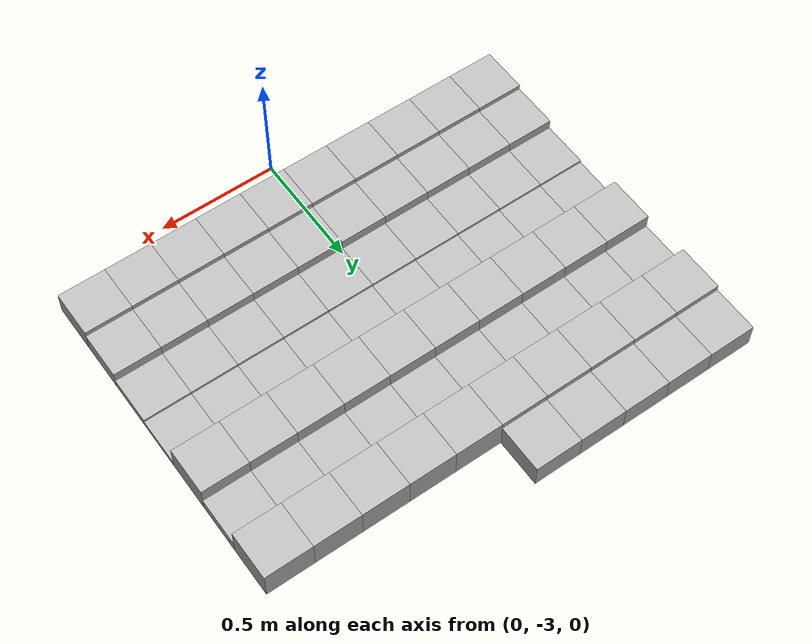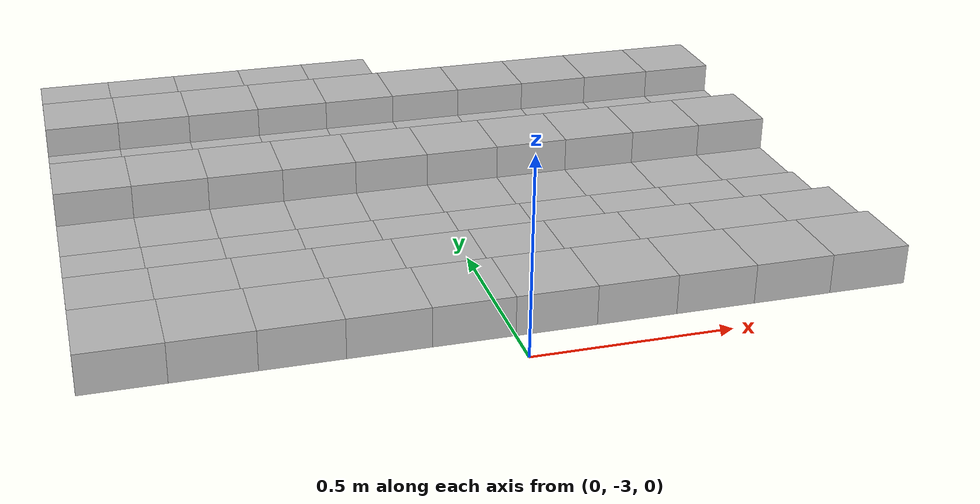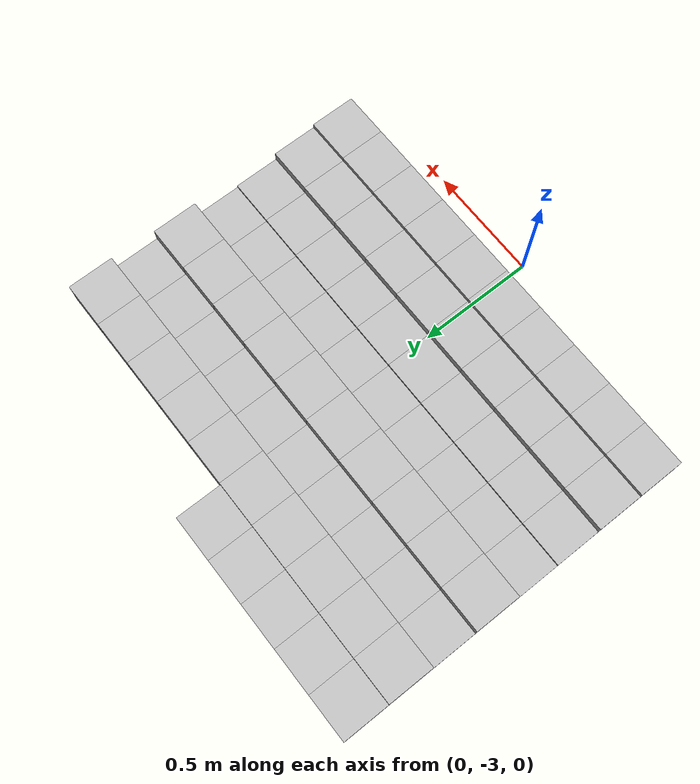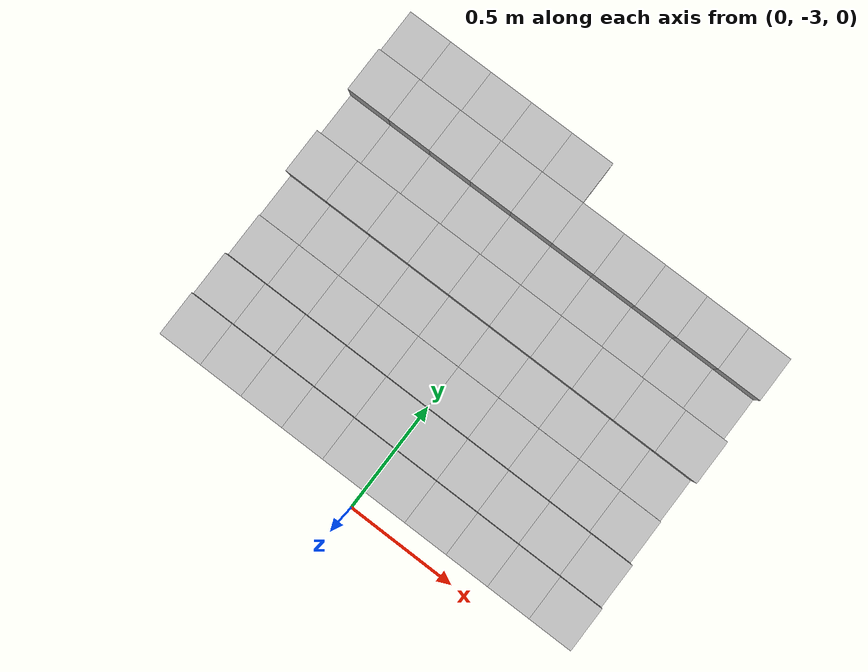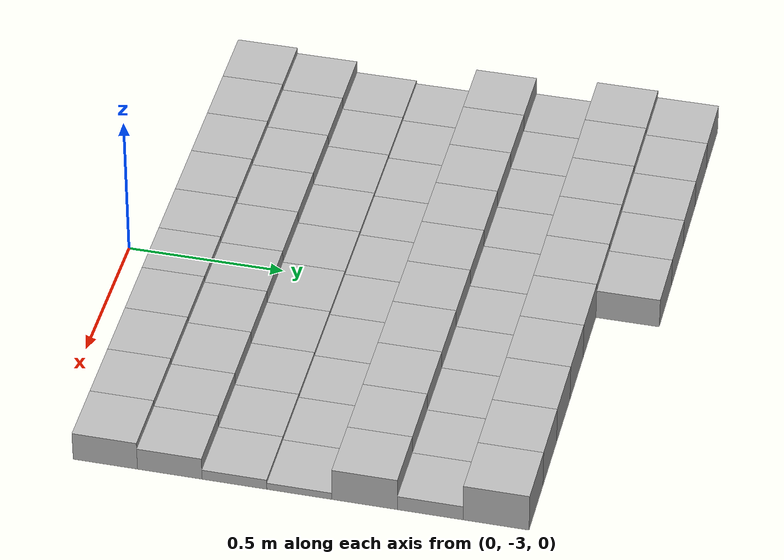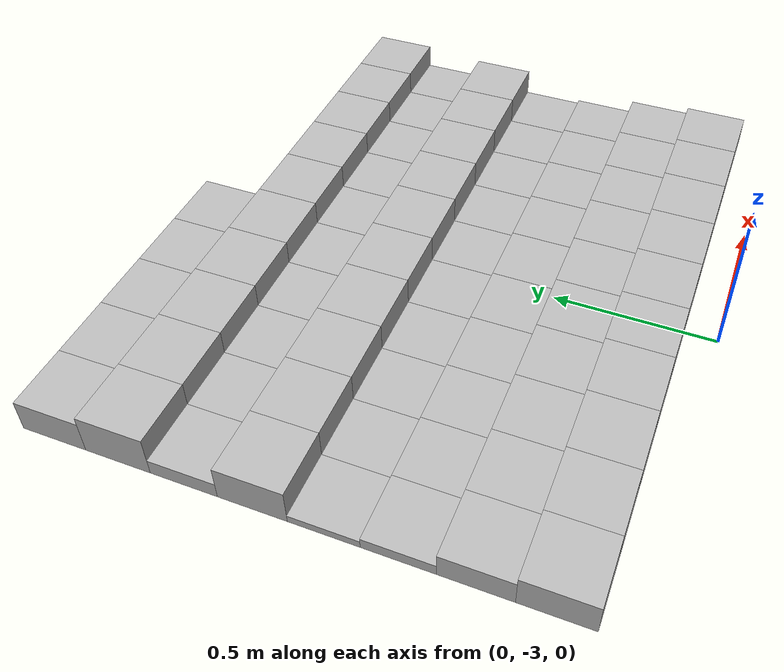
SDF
<sdf version="1.6">
 <model name="Terrain">
  <static>true</static>
  <link name="box_7_0">
   <pose>-0.9 -1.4 0.0535483578431 0 0 0</pose>
   <inertial>
    <mass>1.0</mass>
    <inertia><ixx>0.0</ixx><ixy>0.0</ixy><ixz>0.0</ixz><iyy>0.0</iyy><iyz>0.0</iyz><izz>0.0</izz></inertia>
   </inertial>
   <collision name="collision"><geometry><box><size>0.2 0.2 0.107096715686</size></box></geometry></collision>
   <visual name="visual"><geometry><box><size>0.2 0.2 0.107096715686</size></box></geometry></visual>
  </link>
  <link name="box_7_1">
   <pose>-0.7 -1.4 0.0535483578431 0 0 0</pose>
   <inertial>
    <mass>1.0</mass>
    <inertia><ixx>0.0</ixx><ixy>0.0</ixy><ixz>0.0</ixz><iyy>0.0</iyy><iyz>0.0</iyz><izz>0.0</izz></inertia>
   </inertial>
   <collision name="collision"><geometry><box><size>0.2 0.2 0.107096715686</size></box></geometry></collision>
   <visual name="visual"><geometry><box><size>0.2 0.2 0.107096715686</size></box></geometry></visual>
  </link>
  <link name="box_7_2">
   <pose>-0.5 -1.4 0.0535483578431 0 0 0</pose>
   <inertial>
    <mass>1.0</mass>
    <inertia><ixx>0.0</ixx><ixy>0.0</ixy><ixz>0.0</ixz><iyy>0.0</iyy><iyz>0.0</iyz><izz>0.0</izz></inertia>
   </inertial>
   <collision name="collision"><geometry><box><size>0.2 0.2 0.107096715686</size></box></geometry></collision>
   <visual name="visual"><geometry><box><size>0.2 0.2 0.107096715686</size></box></geometry></visual>
  </link>
  <link name="box_7_3">
   <pose>-0.3 -1.4 0.0535483578431 0 0 0</pose>
   <inertial>
    <mass>1.0</mass>
    <inertia><ixx>0.0</ixx><ixy>0.0</ixy><ixz>0.0</ixz><iyy>0.0</iyy><iyz>0.0</iyz><izz>0.0</izz></inertia>
   </inertial>
   <collision name="collision"><geometry><box><size>0.2 0.2 0.107096715686</size></box></geometry></collision>
   <visual name="visual"><geometry><box><size>0.2 0.2 0.107096715686</size></box></geometry></visual>
  </link>
  <link name="box_7_4">
   <pose>-0.1 -1.4 0.0535483578431 0 0 0</pose>
   <inertial>
    <mass>1.0</mass>
    <inertia><ixx>0.0</ixx><ixy>0.0</ixy><ixz>0.0</ixz><iyy>0.0</iyy><iyz>0.0</iyz><izz>0.0</izz></inertia>
   </inertial>
   <collision name="collision"><geometry><box><size>0.2 0.2 0.107096715686</size></box></geometry></collision>
   <visual name="visual"><geometry><box><size>0.2 0.2 0.107096715686</size></box></geometry></visual>
  </link>
  <link name="box_8_0">
   <pose>-0.9 -1.6 0.0668786849973 0 0 0</pose>
   <inertial>
    <mass>1.0</mass>
    <inertia><ixx>0.0</ixx><ixy>0.0</ixy><ixz>0.0</ixz><iyy>0.0</iyy><iyz>0.0</iyz><izz>0.0</izz></inertia>
   </inertial>
   <collision name="collision"><geometry><box><size>0.2 0.2 0.133757369995</size></box></geometry></collision>
   <visual name="visual"><geometry><box><size>0.2 0.2 0.133757369995</size></box></geometry></visual>
  </link>
  <link name="box_8_1">
   <pose>-0.7 -1.6 0.0668786849973 0 0 0</pose>
   <inertial>
    <mass>1.0</mass>
    <inertia><ixx>0.0</ixx><ixy>0.0</ixy><ixz>0.0</ixz><iyy>0.0</iyy><iyz>0.0</iyz><izz>0.0</izz></inertia>
   </inertial>
   <collision name="collision"><geometry><box><size>0.2 0.2 0.133757369995</size></box></geometry></collision>
   <visual name="visual"><geometry><box><size>0.2 0.2 0.133757369995</size></box></geometry></visual>
  </link>
  <link name="box_8_2">
   <pose>-0.5 -1.6 0.0668786849973 0 0 0</pose>
   <inertial>
    <mass>1.0</mass>
    <inertia><ixx>0.0</ixx><ixy>0.0</ixy><ixz>0.0</ixz><iyy>0.0</iyy><iyz>0.0</iyz><izz>0.0</izz></inertia>
   </inertial>
   <collision name="collision"><geometry><box><size>0.2 0.2 0.133757369995</size></box></geometry></collision>
   <visual name="visual"><geometry><box><size>0.2 0.2 0.133757369995</size></box></geometry></visual>
  </link>
  <link name="box_8_3">
   <pose>-0.3 -1.6 0.0668786849973 0 0 0</pose>
   <inertial>
    <mass>1.0</mass>
    <inertia><ixx>0.0</ixx><ixy>0.0</ixy><ixz>0.0</ixz><iyy>0.0</iyy><iyz>0.0</iyz><izz>0.0</izz></inertia>
   </inertial>
   <collision name="collision"><geometry><box><size>0.2 0.2 0.133757369995</size></box></geometry></collision>
   <visual name="visual"><geometry><box><size>0.2 0.2 0.133757369995</size></box></geometry></visual>
  </link>
  <link name="box_8_4">
   <pose>-0.1 -1.6 0.0668786849973 0 0 0</pose>
   <inertial>
    <mass>1.0</mass>
    <inertia><ixx>0.0</ixx><ixy>0.0</ixy><ixz>0.0</ixz><iyy>0.0</iyy><iyz>0.0</iyz><izz>0.0</izz></inertia>
   </inertial>
   <collision name="collision"><geometry><box><size>0.2 0.2 0.133757369995</size></box></geometry></collision>
   <visual name="visual"><geometry><box><size>0.2 0.2 0.133757369995</size></box></geometry></visual>
  </link>
  <link name="box_8_5">
   <pose>0.1 -1.6 0.0668786849973 0 0 0</pose>
   <inertial>
    <mass>1.0</mass>
    <inertia><ixx>0.0</ixx><ixy>0.0</ixy><ixz>0.0</ixz><iyy>0.0</iyy><iyz>0.0</iyz><izz>0.0</izz></inertia>
   </inertial>
   <collision name="collision"><geometry><box><size>0.2 0.2 0.133757369995</size></box></geometry></collision>
   <visual name="visual"><geometry><box><size>0.2 0.2 0.133757369995</size></box></geometry></visual>
  </link>
  <link name="box_8_6">
   <pose>0.3 -1.6 0.0668786849973 0 0 0</pose>
   <inertial>
    <mass>1.0</mass>
    <inertia><ixx>0.0</ixx><ixy>0.0</ixy><ixz>0.0</ixz><iyy>0.0</iyy><iyz>0.0</iyz><izz>0.0</izz></inertia>
   </inertial>
   <collision name="collision"><geometry><box><size>0.2 0.2 0.133757369995</size></box></geometry></collision>
   <visual name="visual"><geometry><box><size>0.2 0.2 0.133757369995</size></box></geometry></visual>
  </link>
  <link name="box_8_7">
   <pose>0.5 -1.6 0.0668786849973 0 0 0</pose>
   <inertial>
    <mass>1.0</mass>
    <inertia><ixx>0.0</ixx><ixy>0.0</ixy><ixz>0.0</ixz><iyy>0.0</iyy><iyz>0.0</iyz><izz>0.0</izz></inertia>
   </inertial>
   <collision name="collision"><geometry><box><size>0.2 0.2 0.133757369995</size></box></geometry></collision>
   <visual name="visual"><geometry><box><size>0.2 0.2 0.133757369995</size></box></geometry></visual>
  </link>
  <link name="box_8_8">
   <pose>0.7 -1.6 0.0668786849973 0 0 0</pose>
   <inertial>
    <mass>1.0</mass>
    <inertia><ixx>0.0</ixx><ixy>0.0</ixy><ixz>0.0</ixz><iyy>0.0</iyy><iyz>0.0</iyz><izz>0.0</izz></inertia>
   </inertial>
   <collision name="collision"><geometry><box><size>0.2 0.2 0.133757369995</size></box></geometry></collision>
   <visual name="visual"><geometry><box><size>0.2 0.2 0.133757369995</size></box></geometry></visual>
  </link>
  <link name="box_8_9">
   <pose>0.9 -1.6 0.0668786849973 0 0 0</pose>
   <inertial>
    <mass>1.0</mass>
    <inertia><ixx>0.0</ixx><ixy>0.0</ixy><ixz>0.0</ixz><iyy>0.0</iyy><iyz>0.0</iyz><izz>0.0</izz></inertia>
   </inertial>
   <collision name="collision"><geometry><box><size>0.2 0.2 0.133757369995</size></box></geometry></collision>
   <visual name="visual"><geometry><box><size>0.2 0.2 0.133757369995</size></box></geometry></visual>
  </link>
  <link name="box_9_0">
   <pose>-0.9 -1.8 0.0262143682636 0 0 0</pose>
   <inertial>
    <mass>1.0</mass>
    <inertia><ixx>0.0</ixx><ixy>0.0</ixy><ixz>0.0</ixz><iyy>0.0</iyy><iyz>0.0</iyz><izz>0.0</izz></inertia>
   </inertial>
   <collision name="collision"><geometry><box><size>0.2 0.2 0.0524287365273</size></box></geometry></collision>
   <visual name="visual"><geometry><box><size>0.2 0.2 0.0524287365273</size></box></geometry></visual>
  </link>
  <link name="box_9_1">
   <pose>-0.7 -1.8 0.0262143682636 0 0 0</pose>
   <inertial>
    <mass>1.0</mass>
    <inertia><ixx>0.0</ixx><ixy>0.0</ixy><ixz>0.0</ixz><iyy>0.0</iyy><iyz>0.0</iyz><izz>0.0</izz></inertia>
   </inertial>
   <collision name="collision"><geometry><box><size>0.2 0.2 0.0524287365273</size></box></geometry></collision>
   <visual name="visual"><geometry><box><size>0.2 0.2 0.0524287365273</size></box></geometry></visual>
  </link>
  <link name="box_9_2">
   <pose>-0.5 -1.8 0.0262143682636 0 0 0</pose>
   <inertial>
    <mass>1.0</mass>
    <inertia><ixx>0.0</ixx><ixy>0.0</ixy><ixz>0.0</ixz><iyy>0.0</iyy><iyz>0.0</iyz><izz>0.0</izz></inertia>
   </inertial>
   <collision name="collision"><geometry><box><size>0.2 0.2 0.0524287365273</size></box></geometry></collision>
   <visual name="visual"><geometry><box><size>0.2 0.2 0.0524287365273</size></box></geometry></visual>
  </link>
  <link name="box_9_3">
   <pose>-0.3 -1.8 0.0262143682636 0 0 0</pose>
   <inertial>
    <mass>1.0</mass>
    <inertia><ixx>0.0</ixx><ixy>0.0</ixy><ixz>0.0</ixz><iyy>0.0</iyy><iyz>0.0</iyz><izz>0.0</izz></inertia>
   </inertial>
   <collision name="collision"><geometry><box><size>0.2 0.2 0.0524287365273</size></box></geometry></collision>
   <visual name="visual"><geometry><box><size>0.2 0.2 0.0524287365273</size></box></geometry></visual>
  </link>
  <link name="box_9_4">
   <pose>-0.1 -1.8 0.0262143682636 0 0 0</pose>
   <inertial>
    <mass>1.0</mass>
    <inertia><ixx>0.0</ixx><ixy>0.0</ixy><ixz>0.0</ixz><iyy>0.0</iyy><iyz>0.0</iyz><izz>0.0</izz></inertia>
   </inertial>
   <collision name="collision"><geometry><box><size>0.2 0.2 0.0524287365273</size></box></geometry></collision>
   <visual name="visual"><geometry><box><size>0.2 0.2 0.0524287365273</size></box></geometry></visual>
  </link>
  <link name="box_9_5">
   <pose>0.1 -1.8 0.0262143682636 0 0 0</pose>
   <inertial>
    <mass>1.0</mass>
    <inertia><ixx>0.0</ixx><ixy>0.0</ixy><ixz>0.0</ixz><iyy>0.0</iyy><iyz>0.0</iyz><izz>0.0</izz></inertia>
   </inertial>
   <collision name="collision"><geometry><box><size>0.2 0.2 0.0524287365273</size></box></geometry></collision>
   <visual name="visual"><geometry><box><size>0.2 0.2 0.0524287365273</size></box></geometry></visual>
  </link>
  <link name="box_9_6">
   <pose>0.3 -1.8 0.0262143682636 0 0 0</pose>
   <inertial>
    <mass>1.0</mass>
    <inertia><ixx>0.0</ixx><ixy>0.0</ixy><ixz>0.0</ixz><iyy>0.0</iyy><iyz>0.0</iyz><izz>0.0</izz></inertia>
   </inertial>
   <collision name="collision"><geometry><box><size>0.2 0.2 0.0524287365273</size></box></geometry></collision>
   <visual name="visual"><geometry><box><size>0.2 0.2 0.0524287365273</size></box></geometry></visual>
  </link>
  <link name="box_9_7">
   <pose>0.5 -1.8 0.0262143682636 0 0 0</pose>
   <inertial>
    <mass>1.0</mass>
    <inertia><ixx>0.0</ixx><ixy>0.0</ixy><ixz>0.0</ixz><iyy>0.0</iyy><iyz>0.0</iyz><izz>0.0</izz></inertia>
   </inertial>
   <collision name="collision"><geometry><box><size>0.2 0.2 0.0524287365273</size></box></geometry></collision>
   <visual name="visual"><geometry><box><size>0.2 0.2 0.0524287365273</size></box></geometry></visual>
  </link>
  <link name="box_9_8">
   <pose>0.7 -1.8 0.0262143682636 0 0 0</pose>
   <inertial>
    <mass>1.0</mass>
    <inertia><ixx>0.0</ixx><ixy>0.0</ixy><ixz>0.0</ixz><iyy>0.0</iyy><iyz>0.0</iyz><izz>0.0</izz></inertia>
   </inertial>
   <collision name="collision"><geometry><box><size>0.2 0.2 0.0524287365273</size></box></geometry></collision>
   <visual name="visual"><geometry><box><size>0.2 0.2 0.0524287365273</size></box></geometry></visual>
  </link>
  <link name="box_9_9">
   <pose>0.9 -1.8 0.0262143682636 0 0 0</pose>
   <inertial>
    <mass>1.0</mass>
    <inertia><ixx>0.0</ixx><ixy>0.0</ixy><ixz>0.0</ixz><iyy>0.0</iyy><iyz>0.0</iyz><izz>0.0</izz></inertia>
   </inertial>
   <collision name="collision"><geometry><box><size>0.2 0.2 0.0524287365273</size></box></geometry></collision>
   <visual name="visual"><geometry><box><size>0.2 0.2 0.0524287365273</size></box></geometry></visual>
  </link>
  <link name="box_10_0">
   <pose>-0.9 -2.0 0.0581974594022 0 0 0</pose>
   <inertial>
    <mass>1.0</mass>
    <inertia><ixx>0.0</ixx><ixy>0.0</ixy><ixz>0.0</ixz><iyy>0.0</iyy><iyz>0.0</iyz><izz>0.0</izz></inertia>
   </inertial>
   <collision name="collision"><geometry><box><size>0.2 0.2 0.116394918804</size></box></geometry></collision>
   <visual name="visual"><geometry><box><size>0.2 0.2 0.116394918804</size></box></geometry></visual>
  </link>
  <link name="box_10_1">
   <pose>-0.7 -2.0 0.0581974594022 0 0 0</pose>
   <inertial>
    <mass>1.0</mass>
    <inertia><ixx>0.0</ixx><ixy>0.0</ixy><ixz>0.0</ixz><iyy>0.0</iyy><iyz>0.0</iyz><izz>0.0</izz></inertia>
   </inertial>
   <collision name="collision"><geometry><box><size>0.2 0.2 0.116394918804</size></box></geometry></collision>
   <visual name="visual"><geometry><box><size>0.2 0.2 0.116394918804</size></box></geometry></visual>
  </link>
  <link name="box_10_2">
   <pose>-0.5 -2.0 0.0581974594022 0 0 0</pose>
   <inertial>
    <mass>1.0</mass>
    <inertia><ixx>0.0</ixx><ixy>0.0</ixy><ixz>0.0</ixz><iyy>0.0</iyy><iyz>0.0</iyz><izz>0.0</izz></inertia>
   </inertial>
   <collision name="collision"><geometry><box><size>0.2 0.2 0.116394918804</size></box></geometry></collision>
   <visual name="visual"><geometry><box><size>0.2 0.2 0.116394918804</size></box></geometry></visual>
  </link>
  <link name="box_10_3">
   <pose>-0.3 -2.0 0.0581974594022 0 0 0</pose>
   <inertial>
    <mass>1.0</mass>
    <inertia><ixx>0.0</ixx><ixy>0.0</ixy><ixz>0.0</ixz><iyy>0.0</iyy><iyz>0.0</iyz><izz>0.0</izz></inertia>
   </inertial>
   <collision name="collision"><geometry><box><size>0.2 0.2 0.116394918804</size></box></geometry></collision>
   <visual name="visual"><geometry><box><size>0.2 0.2 0.116394918804</size></box></geometry></visual>
  </link>
  <link name="box_10_4">
   <pose>-0.1 -2.0 0.0581974594022 0 0 0</pose>
   <inertial>
    <mass>1.0</mass>
    <inertia><ixx>0.0</ixx><ixy>0.0</ixy><ixz>0.0</ixz><iyy>0.0</iyy><iyz>0.0</iyz><izz>0.0</izz></inertia>
   </inertial>
   <collision name="collision"><geometry><box><size>0.2 0.2 0.116394918804</size></box></geometry></collision>
   <visual name="visual"><geometry><box><size>0.2 0.2 0.116394918804</size></box></geometry></visual>
  </link>
  <link name="box_10_5">
   <pose>0.1 -2.0 0.0581974594022 0 0 0</pose>
   <inertial>
    <mass>1.0</mass>
    <inertia><ixx>0.0</ixx><ixy>0.0</ixy><ixz>0.0</ixz><iyy>0.0</iyy><iyz>0.0</iyz><izz>0.0</izz></inertia>
   </inertial>
   <collision name="collision"><geometry><box><size>0.2 0.2 0.116394918804</size></box></geometry></collision>
   <visual name="visual"><geometry><box><size>0.2 0.2 0.116394918804</size></box></geometry></visual>
  </link>
  <link name="box_10_6">
   <pose>0.3 -2.0 0.0581974594022 0 0 0</pose>
   <inertial>
    <mass>1.0</mass>
    <inertia><ixx>0.0</ixx><ixy>0.0</ixy><ixz>0.0</ixz><iyy>0.0</iyy><iyz>0.0</iyz><izz>0.0</izz></inertia>
   </inertial>
   <collision name="collision"><geometry><box><size>0.2 0.2 0.116394918804</size></box></geometry></collision>
   <visual name="visual"><geometry><box><size>0.2 0.2 0.116394918804</size></box></geometry></visual>
  </link>
  <link name="box_10_7">
   <pose>0.5 -2.0 0.0581974594022 0 0 0</pose>
   <inertial>
    <mass>1.0</mass>
    <inertia><ixx>0.0</ixx><ixy>0.0</ixy><ixz>0.0</ixz><iyy>0.0</iyy><iyz>0.0</iyz><izz>0.0</izz></inertia>
   </inertial>
   <collision name="collision"><geometry><box><size>0.2 0.2 0.116394918804</size></box></geometry></collision>
   <visual name="visual"><geometry><box><size>0.2 0.2 0.116394918804</size></box></geometry></visual>
  </link>
  <link name="box_10_8">
   <pose>0.7 -2.0 0.0581974594022 0 0 0</pose>
   <inertial>
    <mass>1.0</mass>
    <inertia><ixx>0.0</ixx><ixy>0.0</ixy><ixz>0.0</ixz><iyy>0.0</iyy><iyz>0.0</iyz><izz>0.0</izz></inertia>
   </inertial>
   <collision name="collision"><geometry><box><size>0.2 0.2 0.116394918804</size></box></geometry></collision>
   <visual name="visual"><geometry><box><size>0.2 0.2 0.116394918804</size></box></geometry></visual>
  </link>
  <link name="box_10_9">
   <pose>0.9 -2.0 0.0581974594022 0 0 0</pose>
   <inertial>
    <mass>1.0</mass>
    <inertia><ixx>0.0</ixx><ixy>0.0</ixy><ixz>0.0</ixz><iyy>0.0</iyy><iyz>0.0</iyz><izz>0.0</izz></inertia>
   </inertial>
   <collision name="collision"><geometry><box><size>0.2 0.2 0.116394918804</size></box></geometry></collision>
   <visual name="visual"><geometry><box><size>0.2 0.2 0.116394918804</size></box></geometry></visual>
  </link>
  <link name="box_11_0">
   <pose>-0.9 -2.2 0.01241823875 0 0 0</pose>
   <inertial>
    <mass>1.0</mass>
    <inertia><ixx>0.0</ixx><ixy>0.0</ixy><ixz>0.0</ixz><iyy>0.0</iyy><iyz>0.0</iyz><izz>0.0</izz></inertia>
   </inertial>
   <collision name="collision"><geometry><box><size>0.2 0.2 0.0248364774999</size></box></geometry></collision>
   <visual name="visual"><geometry><box><size>0.2 0.2 0.0248364774999</size></box></geometry></visual>
  </link>
  <link name="box_11_1">
   <pose>-0.7 -2.2 0.01241823875 0 0 0</pose>
   <inertial>
    <mass>1.0</mass>
    <inertia><ixx>0.0</ixx><ixy>0.0</ixy><ixz>0.0</ixz><iyy>0.0</iyy><iyz>0.0</iyz><izz>0.0</izz></inertia>
   </inertial>
   <collision name="collision"><geometry><box><size>0.2 0.2 0.0248364774999</size></box></geometry></collision>
   <visual name="visual"><geometry><box><size>0.2 0.2 0.0248364774999</size></box></geometry></visual>
  </link>
  <link name="box_11_2">
   <pose>-0.5 -2.2 0.01241823875 0 0 0</pose>
   <inertial>
    <mass>1.0</mass>
    <inertia><ixx>0.0</ixx><ixy>0.0</ixy><ixz>0.0</ixz><iyy>0.0</iyy><iyz>0.0</iyz><izz>0.0</izz></inertia>
   </inertial>
   <collision name="collision"><geometry><box><size>0.2 0.2 0.0248364774999</size></box></geometry></collision>
   <visual name="visual"><geometry><box><size>0.2 0.2 0.0248364774999</size></box></geometry></visual>
  </link>
  <link name="box_11_3">
   <pose>-0.3 -2.2 0.01241823875 0 0 0</pose>
   <inertial>
    <mass>1.0</mass>
    <inertia><ixx>0.0</ixx><ixy>0.0</ixy><ixz>0.0</ixz><iyy>0.0</iyy><iyz>0.0</iyz><izz>0.0</izz></inertia>
   </inertial>
   <collision name="collision"><geometry><box><size>0.2 0.2 0.0248364774999</size></box></geometry></collision>
   <visual name="visual"><geometry><box><size>0.2 0.2 0.0248364774999</size></box></geometry></visual>
  </link>
  <link name="box_11_4">
   <pose>-0.1 -2.2 0.01241823875 0 0 0</pose>
   <inertial>
    <mass>1.0</mass>
    <inertia><ixx>0.0</ixx><ixy>0.0</ixy><ixz>0.0</ixz><iyy>0.0</iyy><iyz>0.0</iyz><izz>0.0</izz></inertia>
   </inertial>
   <collision name="collision"><geometry><box><size>0.2 0.2 0.0248364774999</size></box></geometry></collision>
   <visual name="visual"><geometry><box><size>0.2 0.2 0.0248364774999</size></box></geometry></visual>
  </link>
  <link name="box_11_5">
   <pose>0.1 -2.2 0.01241823875 0 0 0</pose>
   <inertial>
    <mass>1.0</mass>
    <inertia><ixx>0.0</ixx><ixy>0.0</ixy><ixz>0.0</ixz><iyy>0.0</iyy><iyz>0.0</iyz><izz>0.0</izz></inertia>
   </inertial>
   <collision name="collision"><geometry><box><size>0.2 0.2 0.0248364774999</size></box></geometry></collision>
   <visual name="visual"><geometry><box><size>0.2 0.2 0.0248364774999</size></box></geometry></visual>
  </link>
  <link name="box_11_6">
   <pose>0.3 -2.2 0.01241823875 0 0 0</pose>
   <inertial>
    <mass>1.0</mass>
    <inertia><ixx>0.0</ixx><ixy>0.0</ixy><ixz>0.0</ixz><iyy>0.0</iyy><iyz>0.0</iyz><izz>0.0</izz></inertia>
   </inertial>
   <collision name="collision"><geometry><box><size>0.2 0.2 0.0248364774999</size></box></geometry></collision>
   <visual name="visual"><geometry><box><size>0.2 0.2 0.0248364774999</size></box></geometry></visual>
  </link>
  <link name="box_11_7">
   <pose>0.5 -2.2 0.01241823875 0 0 0</pose>
   <inertial>
    <mass>1.0</mass>
    <inertia><ixx>0.0</ixx><ixy>0.0</ixy><ixz>0.0</ixz><iyy>0.0</iyy><iyz>0.0</iyz><izz>0.0</izz></inertia>
   </inertial>
   <collision name="collision"><geometry><box><size>0.2 0.2 0.0248364774999</size></box></geometry></collision>
   <visual name="visual"><geometry><box><size>0.2 0.2 0.0248364774999</size></box></geometry></visual>
  </link>
  <link name="box_11_8">
   <pose>0.7 -2.2 0.01241823875 0 0 0</pose>
   <inertial>
    <mass>1.0</mass>
    <inertia><ixx>0.0</ixx><ixy>0.0</ixy><ixz>0.0</ixz><iyy>0.0</iyy><iyz>0.0</iyz><izz>0.0</izz></inertia>
   </inertial>
   <collision name="collision"><geometry><box><size>0.2 0.2 0.0248364774999</size></box></geometry></collision>
   <visual name="visual"><geometry><box><size>0.2 0.2 0.0248364774999</size></box></geometry></visual>
  </link>
  <link name="box_11_9">
   <pose>0.9 -2.2 0.01241823875 0 0 0</pose>
   <inertial>
    <mass>1.0</mass>
    <inertia><ixx>0.0</ixx><ixy>0.0</ixy><ixz>0.0</ixz><iyy>0.0</iyy><iyz>0.0</iyz><izz>0.0</izz></inertia>
   </inertial>
   <collision name="collision"><geometry><box><size>0.2 0.2 0.0248364774999</size></box></geometry></collision>
   <visual name="visual"><geometry><box><size>0.2 0.2 0.0248364774999</size></box></geometry></visual>
  </link>
  <link name="box_12_0">
   <pose>-0.9 -2.4 0.0183134875507 0 0 0</pose>
   <inertial>
    <mass>1.0</mass>
    <inertia><ixx>0.0</ixx><ixy>0.0</ixy><ixz>0.0</ixz><iyy>0.0</iyy><iyz>0.0</iyz><izz>0.0</izz></inertia>
   </inertial>
   <collision name="collision"><geometry><box><size>0.2 0.2 0.0366269751015</size></box></geometry></collision>
   <visual name="visual"><geometry><box><size>0.2 0.2 0.0366269751015</size></box></geometry></visual>
  </link>
  <link name="box_12_1">
   <pose>-0.7 -2.4 0.0183134875507 0 0 0</pose>
   <inertial>
    <mass>1.0</mass>
    <inertia><ixx>0.0</ixx><ixy>0.0</ixy><ixz>0.0</ixz><iyy>0.0</iyy><iyz>0.0</iyz><izz>0.0</izz></inertia>
   </inertial>
   <collision name="collision"><geometry><box><size>0.2 0.2 0.0366269751015</size></box></geometry></collision>
   <visual name="visual"><geometry><box><size>0.2 0.2 0.0366269751015</size></box></geometry></visual>
  </link>
  <link name="box_12_2">
   <pose>-0.5 -2.4 0.0183134875507 0 0 0</pose>
   <inertial>
    <mass>1.0</mass>
    <inertia><ixx>0.0</ixx><ixy>0.0</ixy><ixz>0.0</ixz><iyy>0.0</iyy><iyz>0.0</iyz><izz>0.0</izz></inertia>
   </inertial>
   <collision name="collision"><geometry><box><size>0.2 0.2 0.0366269751015</size></box></geometry></collision>
   <visual name="visual"><geometry><box><size>0.2 0.2 0.0366269751015</size></box></geometry></visual>
  </link>
  <link name="box_12_3">
   <pose>-0.3 -2.4 0.0183134875507 0 0 0</pose>
   <inertial>
    <mass>1.0</mass>
    <inertia><ixx>0.0</ixx><ixy>0.0</ixy><ixz>0.0</ixz><iyy>0.0</iyy><iyz>0.0</iyz><izz>0.0</izz></inertia>
   </inertial>
   <collision name="collision"><geometry><box><size>0.2 0.2 0.0366269751015</size></box></geometry></collision>
   <visual name="visual"><geometry><box><size>0.2 0.2 0.0366269751015</size></box></geometry></visual>
  </link>
  <link name="box_12_4">
   <pose>-0.1 -2.4 0.0183134875507 0 0 0</pose>
   <inertial>
    <mass>1.0</mass>
    <inertia><ixx>0.0</ixx><ixy>0.0</ixy><ixz>0.0</ixz><iyy>0.0</iyy><iyz>0.0</iyz><izz>0.0</izz></inertia>
   </inertial>
   <collision name="collision"><geometry><box><size>0.2 0.2 0.0366269751015</size></box></geometry></collision>
   <visual name="visual"><geometry><box><size>0.2 0.2 0.0366269751015</size></box></geometry></visual>
  </link>
  <link name="box_12_5">
   <pose>0.1 -2.4 0.0183134875507 0 0 0</pose>
   <inertial>
    <mass>1.0</mass>
    <inertia><ixx>0.0</ixx><ixy>0.0</ixy><ixz>0.0</ixz><iyy>0.0</iyy><iyz>0.0</iyz><izz>0.0</izz></inertia>
   </inertial>
   <collision name="collision"><geometry><box><size>0.2 0.2 0.0366269751015</size></box></geometry></collision>
   <visual name="visual"><geometry><box><size>0.2 0.2 0.0366269751015</size></box></geometry></visual>
  </link>
  <link name="box_12_6">
   <pose>0.3 -2.4 0.0183134875507 0 0 0</pose>
   <inertial>
    <mass>1.0</mass>
    <inertia><ixx>0.0</ixx><ixy>0.0</ixy><ixz>0.0</ixz><iyy>0.0</iyy><iyz>0.0</iyz><izz>0.0</izz></inertia>
   </inertial>
   <collision name="collision"><geometry><box><size>0.2 0.2 0.0366269751015</size></box></geometry></collision>
   <visual name="visual"><geometry><box><size>0.2 0.2 0.0366269751015</size></box></geometry></visual>
  </link>
  <link name="box_12_7">
   <pose>0.5 -2.4 0.0183134875507 0 0 0</pose>
   <inertial>
    <mass>1.0</mass>
    <inertia><ixx>0.0</ixx><ixy>0.0</ixy><ixz>0.0</ixz><iyy>0.0</iyy><iyz>0.0</iyz><izz>0.0</izz></inertia>
   </inertial>
   <collision name="collision"><geometry><box><size>0.2 0.2 0.0366269751015</size></box></geometry></collision>
   <visual name="visual"><geometry><box><size>0.2 0.2 0.0366269751015</size></box></geometry></visual>
  </link>
  <link name="box_12_8">
   <pose>0.7 -2.4 0.0183134875507 0 0 0</pose>
   <inertial>
    <mass>1.0</mass>
    <inertia><ixx>0.0</ixx><ixy>0.0</ixy><ixz>0.0</ixz><iyy>0.0</iyy><iyz>0.0</iyz><izz>0.0</izz></inertia>
   </inertial>
   <collision name="collision"><geometry><box><size>0.2 0.2 0.0366269751015</size></box></geometry></collision>
   <visual name="visual"><geometry><box><size>0.2 0.2 0.0366269751015</size></box></geometry></visual>
  </link>
  <link name="box_12_9">
   <pose>0.9 -2.4 0.0183134875507 0 0 0</pose>
   <inertial>
    <mass>1.0</mass>
    <inertia><ixx>0.0</ixx><ixy>0.0</ixy><ixz>0.0</ixz><iyy>0.0</iyy><iyz>0.0</iyz><izz>0.0</izz></inertia>
   </inertial>
   <collision name="collision"><geometry><box><size>0.2 0.2 0.0366269751015</size></box></geometry></collision>
   <visual name="visual"><geometry><box><size>0.2 0.2 0.0366269751015</size></box></geometry></visual>
  </link>
  <link name="box_13_0">
   <pose>-0.9 -2.6 0.0403477299378 0 0 0</pose>
   <inertial>
    <mass>1.0</mass>
    <inertia><ixx>0.0</ixx><ixy>0.0</ixy><ixz>0.0</ixz><iyy>0.0</iyy><iyz>0.0</iyz><izz>0.0</izz></inertia>
   </inertial>
   <collision name="collision"><geometry><box><size>0.2 0.2 0.0806954598757</size></box></geometry></collision>
   <visual name="visual"><geometry><box><size>0.2 0.2 0.0806954598757</size></box></geometry></visual>
  </link>
  <link name="box_13_1">
   <pose>-0.7 -2.6 0.0403477299378 0 0 0</pose>
   <inertial>
    <mass>1.0</mass>
    <inertia><ixx>0.0</ixx><ixy>0.0</ixy><ixz>0.0</ixz><iyy>0.0</iyy><iyz>0.0</iyz><izz>0.0</izz></inertia>
   </inertial>
   <collision name="collision"><geometry><box><size>0.2 0.2 0.0806954598757</size></box></geometry></collision>
   <visual name="visual"><geometry><box><size>0.2 0.2 0.0806954598757</size></box></geometry></visual>
  </link>
  <link name="box_13_2">
   <pose>-0.5 -2.6 0.0403477299378 0 0 0</pose>
   <inertial>
    <mass>1.0</mass>
    <inertia><ixx>0.0</ixx><ixy>0.0</ixy><ixz>0.0</ixz><iyy>0.0</iyy><iyz>0.0</iyz><izz>0.0</izz></inertia>
   </inertial>
   <collision name="collision"><geometry><box><size>0.2 0.2 0.0806954598757</size></box></geometry></collision>
   <visual name="visual"><geometry><box><size>0.2 0.2 0.0806954598757</size></box></geometry></visual>
  </link>
  <link name="box_13_3">
   <pose>-0.3 -2.6 0.0403477299378 0 0 0</pose>
   <inertial>
    <mass>1.0</mass>
    <inertia><ixx>0.0</ixx><ixy>0.0</ixy><ixz>0.0</ixz><iyy>0.0</iyy><iyz>0.0</iyz><izz>0.0</izz></inertia>
   </inertial>
   <collision name="collision"><geometry><box><size>0.2 0.2 0.0806954598757</size></box></geometry></collision>
   <visual name="visual"><geometry><box><size>0.2 0.2 0.0806954598757</size></box></geometry></visual>
  </link>
  <link name="box_13_4">
   <pose>-0.1 -2.6 0.0403477299378 0 0 0</pose>
   <inertial>
    <mass>1.0</mass>
    <inertia><ixx>0.0</ixx><ixy>0.0</ixy><ixz>0.0</ixz><iyy>0.0</iyy><iyz>0.0</iyz><izz>0.0</izz></inertia>
   </inertial>
   <collision name="collision"><geometry><box><size>0.2 0.2 0.0806954598757</size></box></geometry></collision>
   <visual name="visual"><geometry><box><size>0.2 0.2 0.0806954598757</size></box></geometry></visual>
  </link>
  <link name="box_13_5">
   <pose>0.1 -2.6 0.0403477299378 0 0 0</pose>
   <inertial>
    <mass>1.0</mass>
    <inertia><ixx>0.0</ixx><ixy>0.0</ixy><ixz>0.0</ixz><iyy>0.0</iyy><iyz>0.0</iyz><izz>0.0</izz></inertia>
   </inertial>
   <collision name="collision"><geometry><box><size>0.2 0.2 0.0806954598757</size></box></geometry></collision>
   <visual name="visual"><geometry><box><size>0.2 0.2 0.0806954598757</size></box></geometry></visual>
  </link>
  <link name="box_13_6">
   <pose>0.3 -2.6 0.0403477299378 0 0 0</pose>
   <inertial>
    <mass>1.0</mass>
    <inertia><ixx>0.0</ixx><ixy>0.0</ixy><ixz>0.0</ixz><iyy>0.0</iyy><iyz>0.0</iyz><izz>0.0</izz></inertia>
   </inertial>
   <collision name="collision"><geometry><box><size>0.2 0.2 0.0806954598757</size></box></geometry></collision>
   <visual name="visual"><geometry><box><size>0.2 0.2 0.0806954598757</size></box></geometry></visual>
  </link>
  <link name="box_13_7">
   <pose>0.5 -2.6 0.0403477299378 0 0 0</pose>
   <inertial>
    <mass>1.0</mass>
    <inertia><ixx>0.0</ixx><ixy>0.0</ixy><ixz>0.0</ixz><iyy>0.0</iyy><iyz>0.0</iyz><izz>0.0</izz></inertia>
   </inertial>
   <collision name="collision"><geometry><box><size>0.2 0.2 0.0806954598757</size></box></geometry></collision>
   <visual name="visual"><geometry><box><size>0.2 0.2 0.0806954598757</size></box></geometry></visual>
  </link>
  <link name="box_13_8">
   <pose>0.7 -2.6 0.0403477299378 0 0 0</pose>
   <inertial>
    <mass>1.0</mass>
    <inertia><ixx>0.0</ixx><ixy>0.0</ixy><ixz>0.0</ixz><iyy>0.0</iyy><iyz>0.0</iyz><izz>0.0</izz></inertia>
   </inertial>
   <collision name="collision"><geometry><box><size>0.2 0.2 0.0806954598757</size></box></geometry></collision>
   <visual name="visual"><geometry><box><size>0.2 0.2 0.0806954598757</size></box></geometry></visual>
  </link>
  <link name="box_13_9">
   <pose>0.9 -2.6 0.0403477299378 0 0 0</pose>
   <inertial>
    <mass>1.0</mass>
    <inertia><ixx>0.0</ixx><ixy>0.0</ixy><ixz>0.0</ixz><iyy>0.0</iyy><iyz>0.0</iyz><izz>0.0</izz></inertia>
   </inertial>
   <collision name="collision"><geometry><box><size>0.2 0.2 0.0806954598757</size></box></geometry></collision>
   <visual name="visual"><geometry><box><size>0.2 0.2 0.0806954598757</size></box></geometry></visual>
  </link>
  <link name="box_14_0">
   <pose>-0.9 -2.8 0.0513480068986 0 0 0</pose>
   <inertial>
    <mass>1.0</mass>
    <inertia><ixx>0.0</ixx><ixy>0.0</ixy><ixz>0.0</ixz><iyy>0.0</iyy><iyz>0.0</iyz><izz>0.0</izz></inertia>
   </inertial>
   <collision name="collision"><geometry><box><size>0.2 0.2 0.102696013797</size></box></geometry></collision>
   <visual name="visual"><geometry><box><size>0.2 0.2 0.102696013797</size></box></geometry></visual>
  </link>
  <link name="box_14_1">
   <pose>-0.7 -2.8 0.0513480068986 0 0 0</pose>
   <inertial>
    <mass>1.0</mass>
    <inertia><ixx>0.0</ixx><ixy>0.0</ixy><ixz>0.0</ixz><iyy>0.0</iyy><iyz>0.0</iyz><izz>0.0</izz></inertia>
   </inertial>
   <collision name="collision"><geometry><box><size>0.2 0.2 0.102696013797</size></box></geometry></collision>
   <visual name="visual"><geometry><box><size>0.2 0.2 0.102696013797</size></box></geometry></visual>
  </link>
  <link name="box_14_2">
   <pose>-0.5 -2.8 0.0513480068986 0 0 0</pose>
   <inertial>
    <mass>1.0</mass>
    <inertia><ixx>0.0</ixx><ixy>0.0</ixy><ixz>0.0</ixz><iyy>0.0</iyy><iyz>0.0</iyz><izz>0.0</izz></inertia>
   </inertial>
   <collision name="collision"><geometry><box><size>0.2 0.2 0.102696013797</size></box></geometry></collision>
   <visual name="visual"><geometry><box><size>0.2 0.2 0.102696013797</size></box></geometry></visual>
  </link>
  <link name="box_14_3">
   <pose>-0.3 -2.8 0.0513480068986 0 0 0</pose>
   <inertial>
    <mass>1.0</mass>
    <inertia><ixx>0.0</ixx><ixy>0.0</ixy><ixz>0.0</ixz><iyy>0.0</iyy><iyz>0.0</iyz><izz>0.0</izz></inertia>
   </inertial>
   <collision name="collision"><geometry><box><size>0.2 0.2 0.102696013797</size></box></geometry></collision>
   <visual name="visual"><geometry><box><size>0.2 0.2 0.102696013797</size></box></geometry></visual>
  </link>
  <link name="box_14_4">
   <pose>-0.1 -2.8 0.0513480068986 0 0 0</pose>
   <inertial>
    <mass>1.0</mass>
    <inertia><ixx>0.0</ixx><ixy>0.0</ixy><ixz>0.0</ixz><iyy>0.0</iyy><iyz>0.0</iyz><izz>0.0</izz></inertia>
   </inertial>
   <collision name="collision"><geometry><box><size>0.2 0.2 0.102696013797</size></box></geometry></collision>
   <visual name="visual"><geometry><box><size>0.2 0.2 0.102696013797</size></box></geometry></visual>
  </link>
  <link name="box_14_5">
   <pose>0.1 -2.8 0.0513480068986 0 0 0</pose>
   <inertial>
    <mass>1.0</mass>
    <inertia><ixx>0.0</ixx><ixy>0.0</ixy><ixz>0.0</ixz><iyy>0.0</iyy><iyz>0.0</iyz><izz>0.0</izz></inertia>
   </inertial>
   <collision name="collision"><geometry><box><size>0.2 0.2 0.102696013797</size></box></geometry></collision>
   <visual name="visual"><geometry><box><size>0.2 0.2 0.102696013797</size></box></geometry></visual>
  </link>
  <link name="box_14_6">
   <pose>0.3 -2.8 0.0513480068986 0 0 0</pose>
   <inertial>
    <mass>1.0</mass>
    <inertia><ixx>0.0</ixx><ixy>0.0</ixy><ixz>0.0</ixz><iyy>0.0</iyy><iyz>0.0</iyz><izz>0.0</izz></inertia>
   </inertial>
   <collision name="collision"><geometry><box><size>0.2 0.2 0.102696013797</size></box></geometry></collision>
   <visual name="visual"><geometry><box><size>0.2 0.2 0.102696013797</size></box></geometry></visual>
  </link>
  <link name="box_14_7">
   <pose>0.5 -2.8 0.0513480068986 0 0 0</pose>
   <inertial>
    <mass>1.0</mass>
    <inertia><ixx>0.0</ixx><ixy>0.0</ixy><ixz>0.0</ixz><iyy>0.0</iyy><iyz>0.0</iyz><izz>0.0</izz></inertia>
   </inertial>
   <collision name="collision"><geometry><box><size>0.2 0.2 0.102696013797</size></box></geometry></collision>
   <visual name="visual"><geometry><box><size>0.2 0.2 0.102696013797</size></box></geometry></visual>
  </link>
  <link name="box_14_8">
   <pose>0.7 -2.8 0.0513480068986 0 0 0</pose>
   <inertial>
    <mass>1.0</mass>
    <inertia><ixx>0.0</ixx><ixy>0.0</ixy><ixz>0.0</ixz><iyy>0.0</iyy><iyz>0.0</iyz><izz>0.0</izz></inertia>
   </inertial>
   <collision name="collision"><geometry><box><size>0.2 0.2 0.102696013797</size></box></geometry></collision>
   <visual name="visual"><geometry><box><size>0.2 0.2 0.102696013797</size></box></geometry></visual>
  </link>
  <link name="box_14_9">
   <pose>0.9 -2.8 0.0513480068986 0 0 0</pose>
   <inertial>
    <mass>1.0</mass>
    <inertia><ixx>0.0</ixx><ixy>0.0</ixy><ixz>0.0</ixz><iyy>0.0</iyy><iyz>0.0</iyz><izz>0.0</izz></inertia>
   </inertial>
   <collision name="collision"><geometry><box><size>0.2 0.2 0.102696013797</size></box></geometry></collision>
   <visual name="visual"><geometry><box><size>0.2 0.2 0.102696013797</size></box></geometry></visual>
  </link>
 </model>
</sdf>
